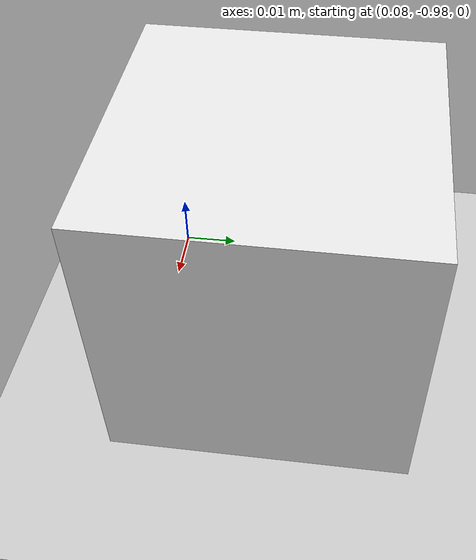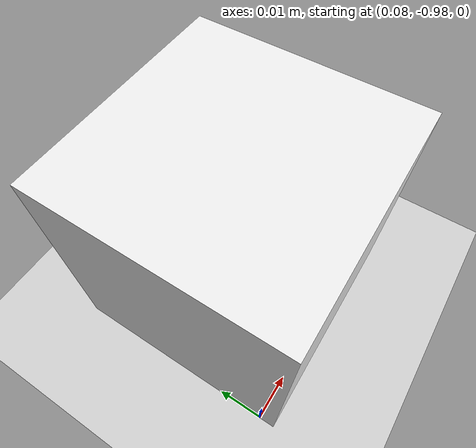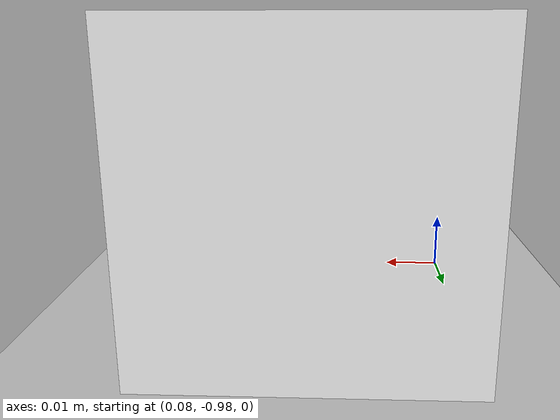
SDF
<sdf version="1.7">
 <world name="default">
  <light name="sun" type="directional">
   <pose>0 0 10 0 -0 0</pose>
   <diffuse>0.8 0.8 0.8 1</diffuse>
   <specular>0.2 0.2 0.2 1</specular>
   <attenuation>
    <range>1000</range>
    <constant>0.9</constant>
    <linear>0.01</linear>
    <quadratic>0.001</quadratic>
   </attenuation>
   <direction>-0.5 0.1 -0.9</direction>
   <spot><inner_angle>0</inner_angle><outer_angle>0</outer_angle><falloff>0</falloff></spot>
  </light>
  <model name="ground_plane">
   <static>1</static>
   <link name="link">
    <collision name="collision">
     <geometry><plane><normal>0 0 1</normal><size>100 100</size></plane></geometry>
     <surface><friction><ode><mu>100</mu><mu2>50</mu2></ode></friction></surface>
    </collision>
    <visual name="visual">
     <cast_shadows>0</cast_shadows>
     <geometry><plane><normal>0 0 1</normal><size>100 100</size></plane></geometry>
     <material>
      <script><uri>file://media/materials/scripts/gazebo.material</uri><name>Gazebo/Grey</name></script>
     </material>
    </visual>
   </link>
  </model>
  <gravity>0 0 -9.85</gravity>
  <magnetic_field>6e-06 2.3e-05 -4.2e-05</magnetic_field>
  <atmosphere type="adiabatic"/>
  <physics type="ode">
   <max_step_size>0.001</max_step_size>
   <real_time_factor>1</real_time_factor>
   <real_time_update_rate>1000</real_time_update_rate>
  </physics>
  <scene><ambient>0.4 0.4 0.4 1</ambient><background>0.7 0.7 0.7 1</background><shadows>1</shadows></scene>
  <audio><device>default</device></audio>
  <spherical_coordinates>
   <surface_model>EARTH_WGS84</surface_model>
   <latitude_deg>0</latitude_deg>
   <longitude_deg>0</longitude_deg>
   <elevation>0</elevation>
   <heading_deg>0</heading_deg>
  </spherical_coordinates>
  <light name="user_directional_light_0" type="directional">
   <pose>-0 -0 10 0 -0 0</pose>
   <diffuse>1 1 1 1</diffuse>
   <specular>0.1 0.1 0.1 1</specular>
   <direction>0.1 0.1 -0.9</direction>
   <attenuation>
    <range>20</range>
    <constant>0.5</constant>
    <linear>0.01</linear>
    <quadratic>0.001</quadratic>
   </attenuation>
   <spot><inner_angle>0</inner_angle><outer_angle>0</outer_angle><falloff>0</falloff></spot>
  </light>
  <model name="cube">
   <pose>0.104865 -0.958385 0.025034 2e-06 0.001377 0.001427</pose>
   <link name="link">
    <inertial>
     <mass>1</mass>
     <inertia>
      <ixx>0.166667</ixx>
      <ixy>0</ixy>
      <ixz>0</ixz>
      <iyy>0.166667</iyy>
      <iyz>0</iyz>
      <izz>0.166667</izz>
     </inertia>
    </inertial>
    <collision name="collision">
     <geometry><box><size>0.05 0.05 0.05</size></box></geometry>
     <surface>
      <friction>
       <torsional>
        <coefficient>10</coefficient>
        <use_patch_radius>1</use_patch_radius>
        <patch_radius>0.05</patch_radius>
       </torsional>
       <ode><mu>10</mu><mu2>10</mu2></ode>
      </friction>
     </surface>
    </collision>
    <visual name="visual">
     <geometry><box><size>0.05 0.05 0.05</size></box></geometry>
     <material>
      <script><name>Gazebo/White</name><uri>file://media/materials/scripts/gazebo.material</uri></script>
     </material>
    </visual>
   </link>
  </model>
 </world>
</sdf>
